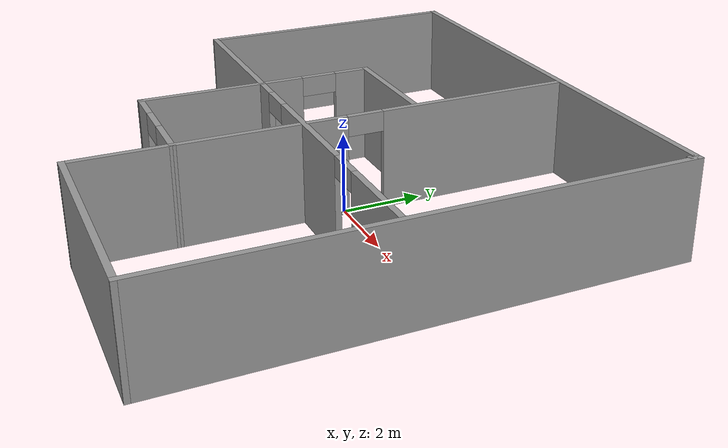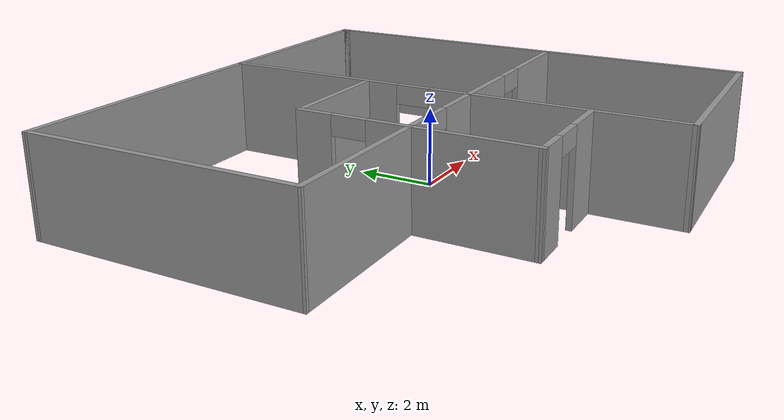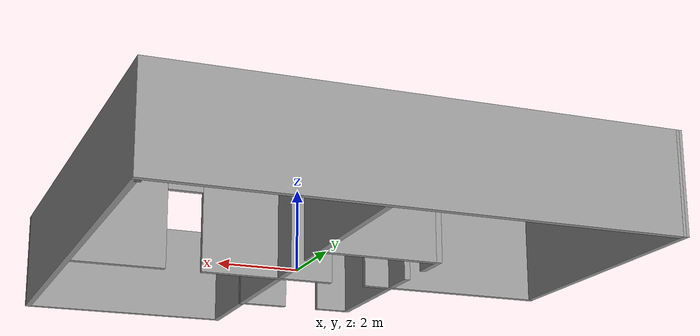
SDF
<?xml version='1.0'?>
<sdf version='1.6'>
  <model name='robotBuilding'>
    <pose frame=''>-0.788242 -0.250024 0 0 -0 0</pose>
    <link name='Wall_15'>
      <collision name='Wall_15_Collision'>
        <geometry>
          <box>
            <size>12.5304 0.15 2.5</size>
          </box>
        </geometry>
        <pose frame=''>0 0 1.25 0 -0 0</pose>
      </collision>
      <visual name='Wall_15_Visual'>
        <pose frame=''>0 0 1.25 0 -0 0</pose>
        <geometry>
          <box>
            <size>12.5304 0.15 2.5</size>
          </box>
        </geometry>
        <material>
          <script>
            <uri>file://media/materials/scripts/gazebo.material</uri>
            <name>Gazebo/Grey</name>
          </script>
          <ambient>1 1 1 1</ambient>
        </material>
        <meta>
          <layer>0</layer>
        </meta>
      </visual>
      <pose frame=''>0.000176 6.17768 0 0 -0 0</pose>
    </link>
    <link name='Wall_16'>
      <collision name='Wall_16_Collision'>
        <geometry>
          <box>
            <size>12.5 0.15 2.5</size>
          </box>
        </geometry>
        <pose frame=''>0 0 1.25 0 -0 0</pose>
      </collision>
      <visual name='Wall_16_Visual'>
        <pose frame=''>0 0 1.25 0 -0 0</pose>
        <geometry>
          <box>
            <size>12.5 0.15 2.5</size>
          </box>
        </geometry>
        <material>
          <script>
            <uri>file://media/materials/scripts/gazebo.material</uri>
            <name>Gazebo/Grey</name>
          </script>
          <ambient>1 1 1 1</ambient>
        </material>
        <meta>
          <layer>0</layer>
        </meta>
      </visual>
      <pose frame=''>6.19039 0.002678 0 0 -0 -1.5708</pose>
    </link>
    <link name='Wall_18'>
      <collision name='Wall_18_Collision'>
        <geometry>
          <box>
            <size>5.45623 0.15 2.5</size>
          </box>
        </geometry>
        <pose frame=''>0 0 1.25 0 -0 0</pose>
      </collision>
      <visual name='Wall_18_Visual'>
        <pose frame=''>0 0 1.25 0 -0 0</pose>
        <geometry>
          <box>
            <size>5.45623 0.15 2.5</size>
          </box>
        </geometry>
        <material>
          <script>
            <uri>file://media/materials/scripts/gazebo.material</uri>
            <name>Gazebo/Grey</name>
          </script>
          <ambient>1 1 1 1</ambient>
        </material>
        <meta>
          <layer>0</layer>
        </meta>
      </visual>
      <pose frame=''>3.53731 -6.1752 0 0 -0 -3.14051</pose>
    </link>
    <link name='Wall_19'>
      <collision name='Wall_19_Collision'>
        <geometry>
          <box>
            <size>2.5 0.15 2.5</size>
          </box>
        </geometry>
        <pose frame=''>0 0 1.25 0 -0 0</pose>
      </collision>
      <visual name='Wall_19_Visual'>
        <pose frame=''>0 0 1.25 0 -0 0</pose>
        <geometry>
          <box>
            <size>2.5 0.15 2.5</size>
          </box>
        </geometry>
        <material>
          <script>
            <uri>file://media/materials/scripts/gazebo.material</uri>
            <name>Gazebo/Grey</name>
          </script>
          <ambient>1 1 1 1</ambient>
        </material>
        <meta>
          <layer>0</layer>
        </meta>
      </visual>
      <pose frame=''>0.884227 -5.00307 0 0 -0 1.5708</pose>
    </link>
    <link name='Wall_20'>
      <pose frame=''>-0.623281 -3.82262 0 0 -0 3.13798</pose>
      <visual name='Wall_20_Visual_0'>
        <pose frame=''>-0.937035 0 1.25 0 -0 0</pose>
        <geometry>
          <box>
            <size>1.291 0.15 2.5</size>
          </box>
        </geometry>
        <material>
          <script>
            <uri>file://media/materials/scripts/gazebo.material</uri>
            <name>Gazebo/Grey</name>
          </script>
          <ambient>1 1 1 1</ambient>
        </material>
        <meta>
          <layer>0</layer>
        </meta>
      </visual>
      <collision name='Wall_20_Collision_0'>
        <geometry>
          <box>
            <size>1.291 0.15 2.5</size>
          </box>
        </geometry>
        <pose frame=''>-0.937035 0 1.25 0 -0 0</pose>
      </collision>
      <visual name='Wall_20_Visual_1'>
        <pose frame=''>1.0955 0 1.25 0 -0 0</pose>
        <geometry>
          <box>
            <size>0.97407 0.15 2.5</size>
          </box>
        </geometry>
        <material>
          <script>
            <uri>file://media/materials/scripts/gazebo.material</uri>
            <name>Gazebo/Grey</name>
          </script>
          <ambient>1 1 1 1</ambient>
        </material>
        <meta>
          <layer>0</layer>
        </meta>
      </visual>
      <collision name='Wall_20_Collision_1'>
        <geometry>
          <box>
            <size>0.97407 0.15 2.5</size>
          </box>
        </geometry>
        <pose frame=''>1.0955 0 1.25 0 -0 0</pose>
      </collision>
      <visual name='Wall_20_Visual_2'>
        <pose frame=''>0.158466 0 2.25 0 -0 0</pose>
        <geometry>
          <box>
            <size>0.9 0.15 0.5</size>
          </box>
        </geometry>
        <material>
          <script>
            <uri>file://media/materials/scripts/gazebo.material</uri>
            <name>Gazebo/Grey</name>
          </script>
          <ambient>1 1 1 1</ambient>
        </material>
        <meta>
          <layer>0</layer>
        </meta>
      </visual>
      <collision name='Wall_20_Collision_2'>
        <geometry>
          <box>
            <size>0.9 0.15 0.5</size>
          </box>
        </geometry>
        <pose frame=''>0.158466 0 2.25 0 -0 0</pose>
      </collision>
    </link>
    <link name='Wall_21'>
      <collision name='Wall_21_Collision'>
        <geometry>
          <box>
            <size>3.2083 0.15 2.5</size>
          </box>
        </geometry>
        <pose frame=''>0 0 1.25 0 -0 0</pose>
      </collision>
      <visual name='Wall_21_Visual'>
        <pose frame=''>0 0 1.25 0 -0 0</pose>
        <geometry>
          <box>
            <size>3.2083 0.15 2.5</size>
          </box>
        </geometry>
        <material>
          <script>
            <uri>file://media/materials/scripts/gazebo.material</uri>
            <name>Gazebo/Grey</name>
          </script>
          <ambient>1 1 1 1</ambient>
        </material>
        <meta>
          <layer>0</layer>
        </meta>
      </visual>
      <pose frame=''>-2.12004 -2.28807 0 0 -0 1.56377</pose>
    </link>
    <link name='Wall_22'>
      <collision name='Wall_22_Collision'>
        <geometry>
          <box>
            <size>4.18715 0.15 2.5</size>
          </box>
        </geometry>
        <pose frame=''>0 0 1.25 0 -0 0</pose>
      </collision>
      <visual name='Wall_22_Visual'>
        <pose frame=''>0 0 1.25 0 -0 0</pose>
        <geometry>
          <box>
            <size>4.18715 0.15 2.5</size>
          </box>
        </geometry>
        <material>
          <script>
            <uri>file://media/materials/scripts/gazebo.material</uri>
            <name>Gazebo/Grey</name>
          </script>
          <ambient>1 1 1 1</ambient>
        </material>
        <meta>
          <layer>0</layer>
        </meta>
      </visual>
      <pose frame=''>-4.12787 -0.758956 0 0 -0 3.14159</pose>
    </link>
    <link name='Wall_23'>
      <collision name='Wall_23_Collision'>
        <geometry>
          <box>
            <size>7.08677 0.15 2.5</size>
          </box>
        </geometry>
        <pose frame=''>0 0 1.25 0 -0 0</pose>
      </collision>
      <visual name='Wall_23_Visual'>
        <pose frame=''>0 0 1.25 0 -0 0</pose>
        <geometry>
          <box>
            <size>7.08677 0.15 2.5</size>
          </box>
        </geometry>
        <material>
          <script>
            <uri>file://media/materials/scripts/gazebo.material</uri>
            <name>Gazebo/Grey</name>
          </script>
          <ambient>1 1 1 1</ambient>
        </material>
        <meta>
          <layer>0</layer>
        </meta>
      </visual>
      <pose frame=''>-6.16824 2.70936 0 0 -0 1.57708</pose>
    </link>
    <link name='Wall_26'>
      <pose frame=''>0.884227 1.14693 0 0 -0 1.5708</pose>
      <visual name='Wall_26_Visual_0'>
        <pose frame=''>-2.94215 0 1.25 0 -0 0</pose>
        <geometry>
          <box>
            <size>4.2157 0.15 2.5</size>
          </box>
        </geometry>
        <material>
          <script>
            <uri>file://media/materials/scripts/gazebo.material</uri>
            <name>Gazebo/Grey</name>
          </script>
          <ambient>1 1 1 1</ambient>
        </material>
        <meta>
          <layer>0</layer>
        </meta>
      </visual>
      <collision name='Wall_26_Collision_0'>
        <geometry>
          <box>
            <size>4.2157 0.15 2.5</size>
          </box>
        </geometry>
        <pose frame=''>-2.94215 0 1.25 0 -0 0</pose>
      </collision>
      <visual name='Wall_26_Visual_1'>
        <pose frame=''>2.55785 0 1.25 0 -0 0</pose>
        <geometry>
          <box>
            <size>4.9843 0.15 2.5</size>
          </box>
        </geometry>
        <material>
          <script>
            <uri>file://media/materials/scripts/gazebo.material</uri>
            <name>Gazebo/Grey</name>
          </script>
          <ambient>1 1 1 1</ambient>
        </material>
        <meta>
          <layer>0</layer>
        </meta>
      </visual>
      <collision name='Wall_26_Collision_1'>
        <geometry>
          <box>
            <size>4.9843 0.15 2.5</size>
          </box>
        </geometry>
        <pose frame=''>2.55785 0 1.25 0 -0 0</pose>
      </collision>
      <visual name='Wall_26_Visual_2'>
        <pose frame=''>-0.384305 0 2.25 0 -0 0</pose>
        <geometry>
          <box>
            <size>0.9 0.15 0.5</size>
          </box>
        </geometry>
        <material>
          <script>
            <uri>file://media/materials/scripts/gazebo.material</uri>
            <name>Gazebo/Grey</name>
          </script>
          <ambient>1 1 1 1</ambient>
        </material>
        <meta>
          <layer>0</layer>
        </meta>
      </visual>
      <collision name='Wall_26_Collision_2'>
        <geometry>
          <box>
            <size>0.9 0.15 0.5</size>
          </box>
        </geometry>
        <pose frame=''>-0.384305 0 2.25 0 -0 0</pose>
      </collision>
    </link>
    <link name='Wall_30'>
      <pose frame=''>-2.1093 0.666044 0 0 -0 1.5708</pose>
      <visual name='Wall_30_Visual_0'>
        <pose frame=''>-0.926708 0 1.25 0 -0 0</pose>
        <geometry>
          <box>
            <size>1.14658 0.15 2.5</size>
          </box>
        </geometry>
        <material>
          <script>
            <uri>file://media/materials/scripts/gazebo.material</uri>
            <name>Gazebo/Grey</name>
          </script>
          <ambient>1 1 1 1</ambient>
        </material>
        <meta>
          <layer>0</layer>
        </meta>
      </visual>
      <collision name='Wall_30_Collision_0'>
        <geometry>
          <box>
            <size>1.14658 0.15 2.5</size>
          </box>
        </geometry>
        <pose frame=''>-0.926708 0 1.25 0 -0 0</pose>
      </collision>
      <visual name='Wall_30_Visual_1'>
        <pose frame=''>1.02329 0 1.25 0 -0 0</pose>
        <geometry>
          <box>
            <size>0.953416 0.15 2.5</size>
          </box>
        </geometry>
        <material>
          <script>
            <uri>file://media/materials/scripts/gazebo.material</uri>
            <name>Gazebo/Grey</name>
          </script>
          <ambient>1 1 1 1</ambient>
        </material>
        <meta>
          <layer>0</layer>
        </meta>
      </visual>
      <collision name='Wall_30_Collision_1'>
        <geometry>
          <box>
            <size>0.953416 0.15 2.5</size>
          </box>
        </geometry>
        <pose frame=''>1.02329 0 1.25 0 -0 0</pose>
      </collision>
      <visual name='Wall_30_Visual_2'>
        <pose frame=''>0.096584 0 2.25 0 -0 0</pose>
        <geometry>
          <box>
            <size>0.9 0.15 0.5</size>
          </box>
        </geometry>
        <material>
          <script>
            <uri>file://media/materials/scripts/gazebo.material</uri>
            <name>Gazebo/Grey</name>
          </script>
          <ambient>1 1 1 1</ambient>
        </material>
        <meta>
          <layer>0</layer>
        </meta>
      </visual>
      <collision name='Wall_30_Collision_2'>
        <geometry>
          <box>
            <size>0.9 0.15 0.5</size>
          </box>
        </geometry>
        <pose frame=''>0.096584 0 2.25 0 -0 0</pose>
      </collision>
    </link>
    <link name='Wall_31'>
      <collision name='Wall_31_Collision'>
        <geometry>
          <box>
            <size>3 0.15 2.5</size>
          </box>
        </geometry>
        <pose frame=''>0 0 1.25 0 -0 0</pose>
      </collision>
      <visual name='Wall_31_Visual'>
        <pose frame=''>0 0 1.25 0 -0 0</pose>
        <geometry>
          <box>
            <size>3 0.15 2.5</size>
          </box>
        </geometry>
        <material>
          <script>
            <uri>file://media/materials/scripts/gazebo.material</uri>
            <name>Gazebo/Grey</name>
          </script>
          <ambient>1 1 1 1</ambient>
        </material>
        <meta>
          <layer>0</layer>
        </meta>
      </visual>
      <pose frame=''>-0.684296 2.09104 0 0 -0 0</pose>
    </link>
    <link name='Wall_33'>
      <pose frame=''>1.9657 -0.758956 0 0 -0 0</pose>
      <visual name='Wall_33_Visual_0'>
        <pose frame=''>-3.7496 0 1.25 0 -0 0</pose>
        <geometry>
          <box>
            <size>0.800798 0.15 2.5</size>
          </box>
        </geometry>
        <material>
          <script>
            <uri>file://media/materials/scripts/gazebo.material</uri>
            <name>Gazebo/Grey</name>
          </script>
          <ambient>1 1 1 1</ambient>
        </material>
        <meta>
          <layer>0</layer>
        </meta>
      </visual>
      <collision name='Wall_33_Collision_0'>
        <geometry>
          <box>
            <size>0.800798 0.15 2.5</size>
          </box>
        </geometry>
        <pose frame=''>-3.7496 0 1.25 0 -0 0</pose>
      </collision>
      <visual name='Wall_33_Visual_1'>
        <pose frame=''>-0.751376 0 1.25 0 -0 0</pose>
        <geometry>
          <box>
            <size>3.39565 0.15 2.5</size>
          </box>
        </geometry>
        <material>
          <script>
            <uri>file://media/materials/scripts/gazebo.material</uri>
            <name>Gazebo/Grey</name>
          </script>
          <ambient>1 1 1 1</ambient>
        </material>
        <meta>
          <layer>0</layer>
        </meta>
      </visual>
      <collision name='Wall_33_Collision_1'>
        <geometry>
          <box>
            <size>3.39565 0.15 2.5</size>
          </box>
        </geometry>
        <pose frame=''>-0.751376 0 1.25 0 -0 0</pose>
      </collision>
      <visual name='Wall_33_Visual_2'>
        <pose frame=''>2.99823 0 1.25 0 -0 0</pose>
        <geometry>
          <box>
            <size>2.30355 0.15 2.5</size>
          </box>
        </geometry>
        <material>
          <script>
            <uri>file://media/materials/scripts/gazebo.material</uri>
            <name>Gazebo/Grey</name>
          </script>
          <ambient>1 1 1 1</ambient>
        </material>
        <meta>
          <layer>0</layer>
        </meta>
      </visual>
      <collision name='Wall_33_Collision_2'>
        <geometry>
          <box>
            <size>2.30355 0.15 2.5</size>
          </box>
        </geometry>
        <pose frame=''>2.99823 0 1.25 0 -0 0</pose>
      </collision>
      <visual name='Wall_33_Visual_3'>
        <pose frame=''>-2.8992 0 2.25 0 -0 0</pose>
        <geometry>
          <box>
            <size>0.9 0.15 0.5</size>
          </box>
        </geometry>
        <material>
          <script>
            <uri>file://media/materials/scripts/gazebo.material</uri>
            <name>Gazebo/Grey</name>
          </script>
          <ambient>1 1 1 1</ambient>
        </material>
        <meta>
          <layer>0</layer>
        </meta>
      </visual>
      <collision name='Wall_33_Collision_3'>
        <geometry>
          <box>
            <size>0.9 0.15 0.5</size>
          </box>
        </geometry>
        <pose frame=''>-2.8992 0 2.25 0 -0 0</pose>
      </collision>
      <visual name='Wall_33_Visual_4'>
        <pose frame=''>1.39645 0 2.25 0 -0 0</pose>
        <geometry>
          <box>
            <size>0.9 0.15 0.5</size>
          </box>
        </geometry>
        <material>
          <script>
            <uri>file://media/materials/scripts/gazebo.material</uri>
            <name>Gazebo/Grey</name>
          </script>
          <ambient>1 1 1 1</ambient>
        </material>
        <meta>
          <layer>0</layer>
        </meta>
      </visual>
      <collision name='Wall_33_Collision_4'>
        <geometry>
          <box>
            <size>0.9 0.15 0.5</size>
          </box>
        </geometry>
        <pose frame=''>1.39645 0 2.25 0 -0 0</pose>
      </collision>
    </link>
    <link name='Wall_7'>
      <collision name='Wall_7_Collision'>
        <geometry>
          <box>
            <size>0.15 0.15 2.5</size>
          </box>
        </geometry>
        <pose frame=''>0 0 1.25 0 -0 0</pose>
      </collision>
      <visual name='Wall_7_Visual'>
        <pose frame=''>0 0 1.25 0 -0 0</pose>
        <geometry>
          <box>
            <size>0.15 0.15 2.5</size>
          </box>
        </geometry>
        <material>
          <script>
            <uri>file://media/materials/scripts/gazebo.material</uri>
            <name>Gazebo/Grey</name>
          </script>
          <ambient>1 1 1 1</ambient>
        </material>
        <meta>
          <layer>0</layer>
        </meta>
      </visual>
      <pose frame=''>6.12264 6.0252 0 0 -0 0</pose>
    </link>
    <link name='Wall_8'>
      <collision name='Wall_8_Collision'>
        <geometry>
          <box>
            <size>0.25 0.15 2.5</size>
          </box>
        </geometry>
        <pose frame=''>0 0 1.25 0 -0 0</pose>
      </collision>
      <visual name='Wall_8_Visual'>
        <pose frame=''>0 0 1.25 0 -0 0</pose>
        <geometry>
          <box>
            <size>0.25 0.15 2.5</size>
          </box>
        </geometry>
        <material>
          <script>
            <uri>file://media/materials/scripts/gazebo.material</uri>
            <name>Gazebo/Grey</name>
          </script>
          <ambient>1 1 1 1</ambient>
        </material>
        <meta>
          <layer>0</layer>
        </meta>
      </visual>
      <pose frame=''>6.12264 6.0752 0 0 -0 1.5708</pose>
    </link>
    <static>1</static>
  </model>
</sdf>
